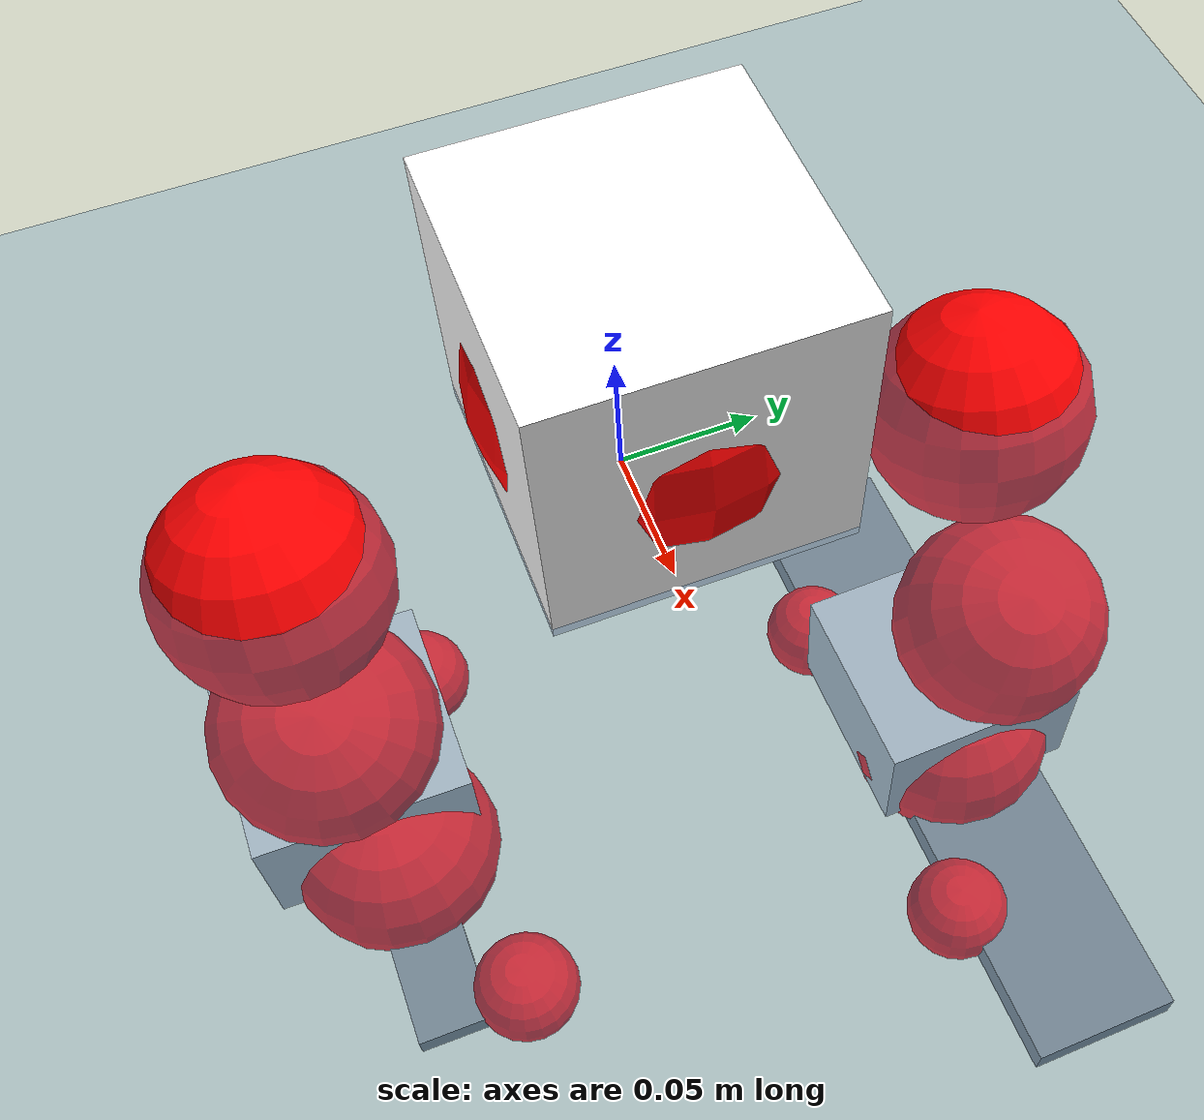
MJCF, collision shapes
<mujoco model="pi_12dof_release_v1">
  <compiler angle="radian" assetdir="assets" balanceinertia="true" inertiafromgeom="false"/>

  <option timestep="0.005" density="1.2" viscosity="2e-05"/>

  <size nkey="1"/>

  <visual>
    <quality shadowsize="8192"/>
    <map shadowclip="0.5"/>
  </visual>

  <default>
    <default class="/">
      <joint armature="0.01" damping="0.01" frictionloss="0.01"/>
      <geom contype="0" conaffinity="0" group="1" solref="-1000 -80"/>
      <site size="0.01 0.005 0.005" group="5"/>
      <general forcelimited="true" biastype="affine" gainprm="20" biasprm="0 -20 -0.5"/>
      <default class="foot">
        <geom size="0.0845 0.036 0.005" type="box" condim="6" group="4" priority="1" friction="0.9 0.2 0.2" solimp="0.015 1 0.005"/>
      </default>
      <default class="reward_collision_sphere">
        <geom group="5" rgba="1 0 0 1"/>
      </default>
    </default>
  </default>

  <asset>
    <texture type="skybox" colorspace="auto" name="//unnamed_texture_0" builtin="gradient" rgb1="0.95 0.95 0.95" rgb2="0.95 0.95 0.95" width="100" height="600"/>
    <texture type="2d" colorspace="auto" name="texplane" builtin="checker" rgb1="0.345 0.575 0.748" rgb2="0.345 0.575 0.748" markrgb="1 1 1" width="512" height="512"/>
    <material name="MatPlane" class="/" texture="texplane" texuniform="true" texrepeat="2 2" specular="0.9"/>
    <mesh name="baselink_1" class="/" file="baselink_1.STL"/>
    <mesh name="r_hip_pitch_link" class="/" file="r_hip_pitch_link.STL"/>
    <mesh name="r_hip_roll_link" class="/" file="r_hip_roll_link.STL"/>
    <mesh name="r_thigh_link" class="/" file="r_thigh_link.STL"/>
    <mesh name="r_calf_link" class="/" file="r_calf_link.STL"/>
    <mesh name="r_ankle_pitch_link" class="/" file="r_ankle_pitch_link.STL"/>
    <mesh name="r_ankle_roll_link" class="/" file="r_ankle_roll_link.STL"/>
    <mesh name="l_hip_pitch_link" class="/" file="l_hip_pitch_link.STL"/>
    <mesh name="l_hip_roll_link" class="/" file="l_hip_roll_link.STL"/>
    <mesh name="l_thigh_link" class="/" file="l_thigh_link.STL"/>
    <mesh name="l_calf_link" class="/" file="l_calf_link.STL"/>
    <mesh name="l_ankle_pitch_link" class="/" file="l_ankle_pitch_link.STL"/>
    <mesh name="l_ankle_roll_link" class="/" file="l_ankle_roll_link.STL"/>
  </asset>

  <worldbody>
    <geom name="floor" class="/" size="100 100 0.125" type="plane" group="0" material="MatPlane"/>
    <light name="toplight_shadow" class="/" pos="0 0 5" dir="0.0990148 0.0990148 -0.990148" type="directional" ambient="0.04 0.04 0.04" diffuse="0.55 0.55 0.55" specular="0.12 0.12 0.12"/>
    <light name="toplight_fill" class="/" pos="0 0 5" dir="0.0990148 0.0990148 -0.990148" type="directional" castshadow="false" ambient="0.04 0.04 0.04" diffuse="0.3 0.3 0.3" specular="0.08 0.08 0.08"/>
    <body name="trunk" pos="0.000559402 0.0105977 0.00607733" quat="0.999986 0.00269655 -0.00308251 -0.00341058">
      <inertial pos="0.0119638 0.0154591 0.0111004" quat="0.681425 -0.0321001 0.00854285 0.731134" mass="2.87234" diaginertia="0.0261176 0.112062 0.000206422"/>
      <joint name="//unnamed_joint_0" type="free"/>
      <geom name="//unnamed_geom_1" class="/" type="mesh" density="0" rgba="1 1 1 1" mesh="baselink_1"/>
      <geom name="//unnamed_geom_2" class="/" size="0.0547196 0.0547196 0.0547196" pos="0 0 0.0438422" type="box" rgba="1 1 1 1"/>
      <geom name="//unnamed_geom_3" class="reward_collision_sphere" size="0.0601916" pos="0 0 0.0383619"/>
      <site name="imu" class="/" pos="0.0134976 -0.00907007 -0.00897607" size="0.0109439"/>
      <camera name="track" class="/" pos="0 -3.20156 0" quat="0.707107 0.707107 0 0" mode="trackcom"/>
      <camera name="ego_camera" class="/" pos="0.0850777 0 0.098645" quat="-0.5 -0.5 0.5 0.5"/>
      <body name="r_hip_pitch_link" pos="-0.0026286 -0.0365506 -0.0203813" quat="0.99217 0.00035253 -0.124892 -0.000604514">
        <inertial pos="0.00295525 -0.0756921 -0.000284603" quat="-0.0305851 0.709883 -0.110725 0.694889" mass="0.45193" diaginertia="0.00019707 0.00107026 3.94905e-06"/>
        <joint name="r_hip_pitch_joint" class="/" pos="0 0 0" axis="0.0021912 -0.999997 0.000732806" range="-1.95032 1.0632" armature="0.0122436" damping="0" frictionloss="0.00291036"/>
        <geom name="//unnamed_geom_4" class="/" type="mesh" density="0" rgba="0.75294 0.75294 0.75294 1" mesh="r_hip_pitch_link"/>
        <geom name="//unnamed_geom_5" class="/" size="0.000547196 0.000547196 0.000547196" type="box" rgba="0.75294 0.75294 0.75294 1"/>
        <body name="r_hip_roll_link" pos="-0.0123283 -0.0998018 -0.00564338" quat="0.999968 -0.00713755 0.0010639 -0.00344797">
          <inertial pos="-0.0012601 -0.0156159 -0.0293724" quat="0.711851 -0.0482111 -0.0642501 0.697722" mass="0.451661" diaginertia="0.000733475 0.00235428 6.26806e-06"/>
          <joint name="r_hip_roll_joint" class="/" pos="0 0 0" axis="-0.999067 -0.0373993 -0.0216127" range="-0.130997 0.511247" armature="0.00366815" damping="0" frictionloss="0.0123933"/>
          <geom name="//unnamed_geom_6" class="/" type="mesh" density="0" rgba="0.75294 0.75294 0.75294 1" mesh="r_hip_roll_link"/>
          <geom name="//unnamed_geom_7" class="/" size="0.000547196 0.000547196 0.000547196" type="box" rgba="0.75294 0.75294 0.75294 1"/>
          <geom name="//unnamed_geom_8" class="reward_collision_sphere" size="0.0437757"/>
          <body name="r_thigh_link" pos="-0.0047254 -0.00448181 -0.0369531" quat="0.999999 -0.000245833 0.000322583 0.00093864">
            <inertial pos="0.0137736 0.011954 -0.0136354" quat="0.757404 0.652785 0.0103383 -0.0102175" mass="0.152847" diaginertia="0.00026722 0.000917512 3.33388e-06"/>
            <joint name="r_thigh_joint" class="/" pos="0 0 0" axis="0.055806 0.0352285 -0.99782" stiffness="0.0744063" range="0.00596857 0.90344" armature="0.00331142" damping="0.0876374" frictionloss="0.00266136"/>
            <geom name="//unnamed_geom_9" class="/" type="mesh" density="0" rgba="0.75294 0.75294 0.75294 1" mesh="r_thigh_link"/>
            <geom name="//unnamed_geom_10" class="/" size="0.000547196 0.000547196 0.000547196" type="box" rgba="0.75294 0.75294 0.75294 1"/>
            <body name="r_calf_link" pos="0.0158778 0.00370685 -0.0297934" quat="0.94743 0.00108008 0.319954 0.00201521">
              <inertial pos="0.00313224 -0.00905781 -0.0304418" quat="0.997526 -0.0234963 -0.0653314 -0.011042" mass="1.14988" diaginertia="0.00746505 0.0368199 7.84387e-06"/>
              <joint name="r_calf_joint" class="/" pos="0 0 0" axis="0.0341906 -0.996667 -0.0740707" stiffness="0.0154114" range="-1.47252 0.727859" armature="0.0107006" damping="0.0377919" frictionloss="0.00312986"/>
              <geom name="//unnamed_geom_11" class="/" type="mesh" density="0" rgba="0.75294 0.75294 0.75294 1" mesh="r_calf_link"/>
              <geom name="//unnamed_geom_12" class="/" size="0.000547196 0.000547196 0.000547196" type="box" rgba="0.75294 0.75294 0.75294 1"/>
              <geom name="//unnamed_geom_13" class="reward_collision_sphere" size="0.0437757"/>
              <body name="r_ankle_pitch_link" pos="0.00736793 0.0016397 -0.0630033" quat="0.980091 -0.000595811 -0.19855 -0.000324487">
                <inertial pos="-0.00323878 0.0158292 -0.0144983" quat="0.00458942 0.722403 0.0228252 0.69108" mass="0.212044" diaginertia="0.000648921 0.00231531 5.87489e-06"/>
                <joint name="r_ankle_pitch_joint" class="/" pos="0 0 0" axis="0.0204972 -0.999702 -0.013228" stiffness="0.00443623" range="-1.0838 0.791155" armature="0.00443199" damping="0" frictionloss="0.00338815"/>
                <geom name="//unnamed_geom_14" class="/" type="mesh" density="0" rgba="0.75294 0.75294 0.75294 1" mesh="r_ankle_pitch_link"/>
                <geom name="//unnamed_geom_15" class="/" size="0.0426813 0.0437757 0.0273598" type="box" rgba="0.75294 0.75294 0.75294 1"/>
                <body name="r_ankle_roll_link" pos="0.089959 0.00727161 -0.013912" quat="0.999997 0.00208433 0.000655193 0.000824383">
                  <inertial pos="-0.0170117 -0.0101203 -0.00996496" quat="0.533234 0.425101 0.45748 0.570668" mass="0.54633" diaginertia="0.00185502 0.00748119 1.25929e-05"/>
                  <joint name="r_ankle_roll_joint" class="/" pos="0 0 0" axis="-0.996403 0.0748843 -0.03966" range="-0.47205 -0.0956733" armature="0.0123535" damping="0" frictionloss="0.00757586"/>
                  <geom name="//unnamed_geom_16" class="/" type="mesh" density="0" rgba="0.75294 0.75294 0.75294 1" mesh="r_ankle_roll_link"/>
                  <geom name="//unnamed_geom_17" class="/" type="mesh" rgba="0.75294 0.75294 0.75294 1" mesh="r_ankle_roll_link"/>
                  <geom name="right_foot" class="foot" size="0.0826292 0.0152693 0.0053105" pos="-0.0578528 0 -0.0241132"/>
                  <geom name="//unnamed_geom_19" class="reward_collision_sphere" size="0.0437757" pos="-0.0567184 0 -0.0109606"/>
                  <geom name="//unnamed_geom_20" class="reward_collision_sphere" size="0.0218879" pos="0.0170155 0.0320156 -0.0219211"/>
                  <geom name="//unnamed_geom_21" class="reward_collision_sphere" size="0.0218879" pos="-0.136124 0.0320156 -0.0219211"/>
                  <site name="right_foot" class="foot" pos="-0.0578528 0 -0.0241132" size="0.0109439"/>
                </body>
              </body>
            </body>
          </body>
        </body>
      </body>
      <body name="l_hip_pitch_link" pos="0.00233622 0.0288031 -0.0298042" quat="0.992175 -0.000351434 -0.124852 0.000480086">
        <inertial pos="-0.0033805 0.0917885 -0.0100107" quat="-0.0451476 0.690516 0.018517 0.721669" mass="0.669407" diaginertia="0.00027694 0.00133149 4.7904e-06"/>
        <joint name="l_hip_pitch_joint" class="/" pos="0 0 0" axis="-0.0304529 0.999467 0.0117569" range="-1.30253 1.48472" armature="0.0126247" damping="0.00271616" frictionloss="0.0110401"/>
        <geom name="//unnamed_geom_22" class="/" type="mesh" density="0" rgba="0.75294 0.75294 0.75294 1" mesh="l_hip_pitch_link"/>
        <geom name="//unnamed_geom_23" class="/" size="0.000547196 0.000547196 0.000547196" type="box" rgba="0.75294 0.75294 0.75294 1"/>
        <body name="l_hip_roll_link" pos="0.00276271 0.0993445 -0.0052782" quat="0.999973 0.0064271 -0.00264053 -0.00231016">
          <inertial pos="-0.00353744 -0.0163476 -0.0398488" quat="0.670515 -0.0336318 -0.0744404 0.737385" mass="0.601069" diaginertia="0.000689471 0.00254824 5.20316e-06"/>
          <joint name="l_hip_roll_joint" class="/" pos="0 0 0" axis="-0.998495 -0.0300371 -0.0458814" range="-0.478845 -0.012083" armature="0.00218701" damping="0" frictionloss="0.0159943"/>
          <geom name="//unnamed_geom_24" class="/" type="mesh" density="0" rgba="0.75294 0.75294 0.75294 1" mesh="l_hip_roll_link"/>
          <geom name="//unnamed_geom_25" class="/" size="0.000547196 0.000547196 0.000547196" type="box" rgba="0.75294 0.75294 0.75294 1"/>
          <geom name="//unnamed_geom_26" class="reward_collision_sphere" size="0.0437757"/>
          <body name="l_thigh_link" pos="0.00775861 0.000649836 -0.0490305" quat="0.99999 0.00362008 0.000861761 -0.00249618">
            <inertial pos="-0.000270292 -0.0146265 -0.0237127" quat="0.682394 0.730978 -0.00236189 -0.00182951" mass="0.151209" diaginertia="0.000254807 0.00108299 3.13684e-06"/>
            <joint name="l_thigh_joint" class="/" pos="0 0 0" axis="0.00655271 -0.00185199 -0.999977" range="-0.728918 0.19024" armature="0.0163988" damping="0.077608" frictionloss="0.00747986"/>
            <geom name="//unnamed_geom_27" class="/" type="mesh" density="0" rgba="0.75294 0.75294 0.75294 1" mesh="l_thigh_link"/>
            <geom name="//unnamed_geom_28" class="/" size="0.000547196 0.000547196 0.000547196" type="box" rgba="0.75294 0.75294 0.75294 1"/>
            <body name="l_calf_link" pos="0.0156018 -0.000962417 -0.0437808" quat="0.949871 0.00199126 0.312612 0.0038213">
              <inertial pos="-0.00151602 0.0122219 -0.035032" quat="0.999982 0.00317077 0.00127912 0.00485639" mass="1.16802" diaginertia="0.00739604 0.0376346 7.55426e-06"/>
              <joint name="l_calf_joint" class="/" pos="0 0 0" axis="0.0461789 0.998932 0.0016756" stiffness="0.0817417" range="-0.911989 1.78312" armature="0.0148674" damping="0.00663627" frictionloss="0.00782915"/>
              <geom name="//unnamed_geom_29" class="/" type="mesh" density="0" rgba="0.75294 0.75294 0.75294 1" mesh="l_calf_link"/>
              <geom name="//unnamed_geom_30" class="/" size="0.000547196 0.000547196 0.000547196" type="box" rgba="0.75294 0.75294 0.75294 1"/>
              <geom name="//unnamed_geom_31" class="reward_collision_sphere" size="0.0437757"/>
              <body name="l_ankle_pitch_link" pos="0.0109155 -0.0120285 -0.0703745" quat="0.9805 0.00203439 -0.196497 0.0021085">
                <inertial pos="0.00540013 0.0104566 0.00230829" quat="-0.00469394 0.71554 -0.0111032 0.698468" mass="0.200401" diaginertia="0.000561964 0.00234783 6.28504e-06"/>
                <joint name="l_ankle_pitch_joint" class="/" pos="0 0 0" axis="0.00282049 0.999935 0.0110064" range="-0.438856 1.3267" armature="0.0178788" damping="0" frictionloss="0.0164102"/>
                <geom name="//unnamed_geom_32" class="/" type="mesh" density="0" rgba="0.75294 0.75294 0.75294 1" mesh="l_ankle_pitch_link"/>
                <geom name="//unnamed_geom_33" class="/" size="0.0426813 0.0437757 0.0273598" type="box" rgba="0.75294 0.75294 0.75294 1"/>
                <body name="l_ankle_roll_link" pos="0.0758706 -0.00133401 -0.00781869" quat="0.999999 -0.000520217 -0.00111413 -0.000499071">
                  <inertial pos="-0.0176176 -0.00305669 -0.00907726" quat="0.563155 0.429245 0.432596 0.558091" mass="0.595449" diaginertia="0.00199155 0.00979283 1.45959e-05"/>
                  <joint name="l_ankle_roll_joint" class="/" pos="0 0 0" axis="-0.999919 0.00250782 0.012463" range="-0.46291 0.150776" armature="0.0127491" damping="0.0868128" frictionloss="0.0146903"/>
                  <geom name="//unnamed_geom_34" class="/" type="mesh" density="0" rgba="0.75294 0.75294 0.75294 1" mesh="l_ankle_roll_link"/>
                  <geom name="//unnamed_geom_35" class="/" type="mesh" rgba="0.75294 0.75294 0.75294 1" mesh="l_ankle_roll_link"/>
                  <geom name="left_foot" class="foot" size="0.147478 0.031137 0.00689837" pos="-0.0578528 0 -0.0241132"/>
                  <geom name="//unnamed_geom_37" class="reward_collision_sphere" size="0.0437757" pos="-0.0567184 0 -0.0109606"/>
                  <geom name="//unnamed_geom_38" class="reward_collision_sphere" size="0.0218879" pos="0.0170155 -0.0320156 -0.0219211"/>
                  <geom name="//unnamed_geom_39" class="reward_collision_sphere" size="0.0218879" pos="-0.136124 -0.0320156 -0.0219211"/>
                  <site name="left_foot" class="foot" pos="-0.0578528 0 -0.0241132" size="0.0109439"/>
                </body>
              </body>
            </body>
          </body>
        </body>
      </body>
    </body>
  </worldbody>

  <contact>
    <pair class="/" geom1="floor" geom2="right_foot" name="//unnamed_contact_1"/>
    <pair class="/" geom1="floor" geom2="left_foot" name="//unnamed_contact_0"/>
  </contact>

  <actuator>
    <general name="r_hip_pitch_joint" class="/" joint="r_hip_pitch_joint" forcerange="-29.3995 29.3995" gainprm="26.3501" biasprm="0 -26.3501 -0.466609"/>
    <general name="r_hip_roll_joint" class="/" joint="r_hip_roll_joint" forcerange="-9.23832 9.23832" gainprm="26.3501" biasprm="0 -26.3501 -0.466609"/>
    <general name="r_thigh_joint" class="/" joint="r_thigh_joint" forcerange="-23.4908 23.4908" gainprm="26.3501" biasprm="0 -26.3501 -0.466609"/>
    <general name="r_calf_joint" class="/" joint="r_calf_joint" forcerange="-21.1074 21.1074" gainprm="26.3501" biasprm="0 -26.3501 -0.466609"/>
    <general name="r_ankle_pitch_joint" class="/" joint="r_ankle_pitch_joint" forcerange="-23.3329 23.3329" gainprm="26.3501" biasprm="0 -26.3501 -0.466609"/>
    <general name="r_ankle_roll_joint" class="/" joint="r_ankle_roll_joint" forcerange="-12.7224 12.7224" gainprm="26.3501" biasprm="0 -26.3501 -0.466609"/>
    <general name="l_hip_pitch_joint" class="/" joint="l_hip_pitch_joint" forcerange="-15.9906 15.9906" gainprm="26.3501" biasprm="0 -26.3501 -0.466609"/>
    <general name="l_hip_roll_joint" class="/" joint="l_hip_roll_joint" forcerange="-22.7051 22.7051" gainprm="26.3501" biasprm="0 -26.3501 -0.466609"/>
    <general name="l_thigh_joint" class="/" joint="l_thigh_joint" forcerange="-21.6459 21.6459" gainprm="26.3501" biasprm="0 -26.3501 -0.466609"/>
    <general name="l_calf_joint" class="/" joint="l_calf_joint" forcerange="-30.4624 30.4624" gainprm="26.3501" biasprm="0 -26.3501 -0.466609"/>
    <general name="l_ankle_pitch_joint" class="/" joint="l_ankle_pitch_joint" forcerange="-24.078 24.078" gainprm="26.3501" biasprm="0 -26.3501 -0.466609"/>
    <general name="l_ankle_roll_joint" class="/" joint="l_ankle_roll_joint" forcerange="-32.8587 32.8587" gainprm="26.3501" biasprm="0 -26.3501 -0.466609"/>
  </actuator>

  <sensor>
    <gyro site="imu" name="imu_angular_velocity"/>
    <velocimeter site="imu" name="imu_linear_velocity"/>
    <framelinvel objtype="site" objname="left_foot" name="left_foot_global_linear_velocity"/>
    <framelinvel objtype="site" objname="right_foot" name="right_foot_global_linear_velocity"/>
  </sensor>

  <keyframe>
    <key name="home" qpos="0 0 0.291 1 0 0 0 0.4 0 0 -0.8 0.4 0 -0.4 0 0 0.8 -0.4 0"/>
  </keyframe>
</mujoco>
